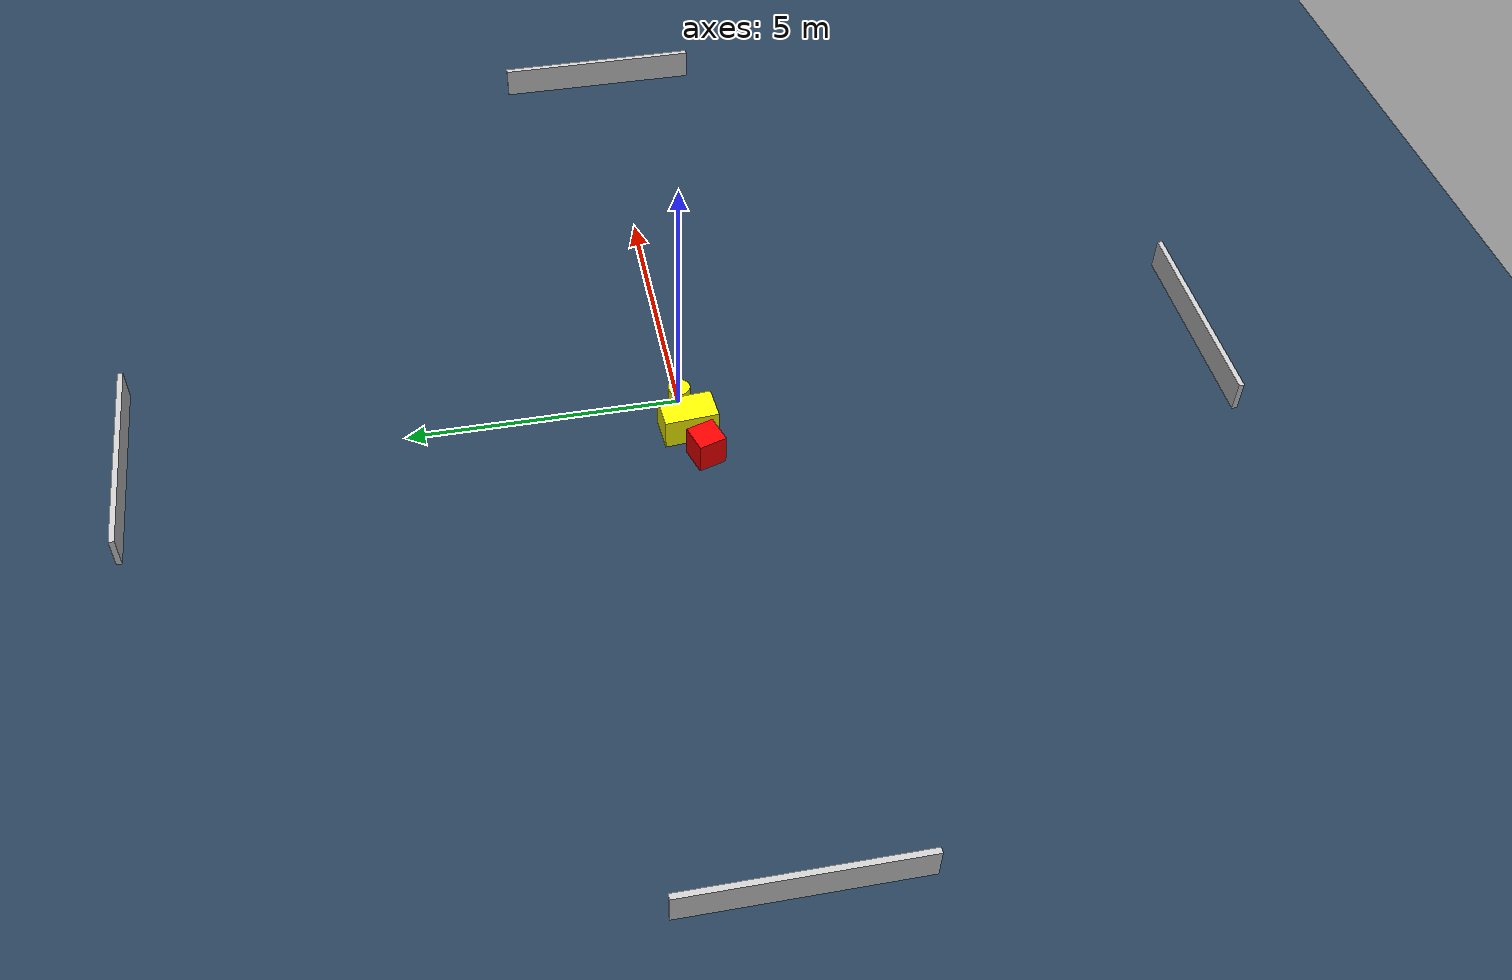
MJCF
<?xml version="1.0" ?>
<mujoco model="generated_environment">
  <option timestep="0.01" integrator="RK4" cone="elliptic"/>
  <default>
    <geom density="1"/>
  </default>
  <asset>
    <texture builtin="gradient" height="3072" name="skybox" rgb1="0.3 0.5 0.7" rgb2="0 0 0" type="skybox" width="512"/>
    <texture builtin="checker" height="300" name="groundplane" rgb1="0.2 0.3 0.4" rgb2="0.1 0.2 0.3" type="2d" width="300"/>
    <material name="groundplane" reflectance="0.2" texrepeat="5 5" texture="groundplane"/>
  </asset>
  <worldbody>
    <light dir="0 0 -1" directional="true" pos="0 0 1.5"/>
    <geom condim="3" friction="0.5 0.005 0.001" material="groundplane" name="floor" pos="0 0 0" size="0 0 0.05" type="plane"/>
    <body name="walls">
      <geom name="wall_1" condim="4" pos="-10.0 0.0 0.3" rgba="0.800000011920929 0.800000011920929 0.800000011920929 1.0" size="0.05 2.0 0.3" type="box"/>
      <geom name="wall_2" condim="4" pos="10.0 0.0 0.3" rgba="0.800000011920929 0.800000011920929 0.800000011920929 1.0" size="0.05 2.0 0.3" type="box"/>
      <geom name="wall_3" condim="4" pos="0.0 -10.0 0.3" rgba="0.800000011920929 0.800000011920929 0.800000011920929 1.0" size="2.0 0.05 0.3" type="box"/>
      <geom name="wall_4" condim="4" pos="0.0 10.0 0.3" rgba="0.800000011920929 0.800000011920929 0.800000011920929 1.0" size="2.0 0.05 0.3" type="box"/>
    </body>
    <body name="robot">
      <joint name="joint_x" type="slide" pos="0 0 0" axis="1 0 0"/>
      <joint name="joint_y" type="slide" pos="0 0 0" axis="0 1 0"/>
      <geom name="robot" type="cylinder" pos="0.0 0.0 0.2" size="0.2 0.2 0.0" mass="5.0" friction="1.0 0.005 0.0001" condim="4" rgba="1.0 1.0 0.0 1.0"/>
    </body>
    <body name="obstacle_1_movable">
      <geom name="obstacle_1_movable" condim="4" pos="-0.7197467911039621 -0.03249827121594447 0.3" euler="0 0 94.06003046922197" friction="0.0 0.005 0.001" rgba="1.0 1.0 0.0 1.0" size="0.49217229407532437 0.2979541816226551 0.3" type="box" mass="0.1"/>
      <joint type="free"/>
    </body>
    <body name="obstacle_2_static">
      <geom name="obstacle_2_static" condim="4" pos="-1.4045382631035364 -0.23057092037176236 0.3" euler="0 0 287.2599206028926" friction="0.0 0.005 0.001" rgba="1.0 0.0 0.0 1.0" size="0.25907037448383285 0.25893957415456986 0.3" type="box"/>
    </body>
  </worldbody>
  <actuator>
    <motor name="actuator_x" joint="joint_x" gear="1" ctrlrange="-1 1"/>
    <motor name="actuator_y" joint="joint_y" gear="1" ctrlrange="-1 1"/>
  </actuator>
</mujoco>
